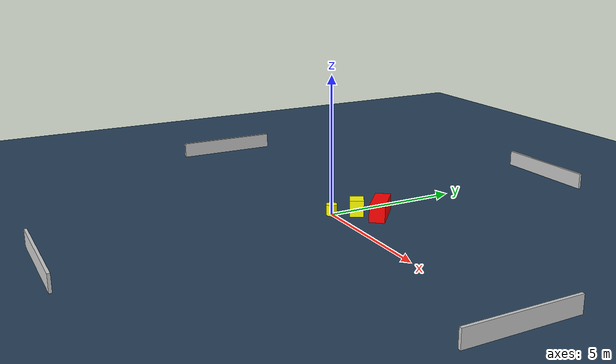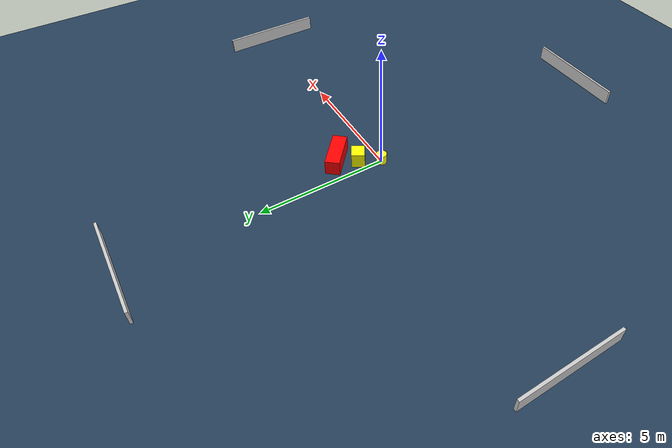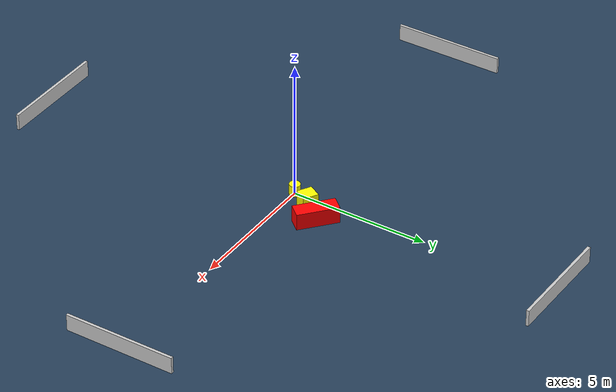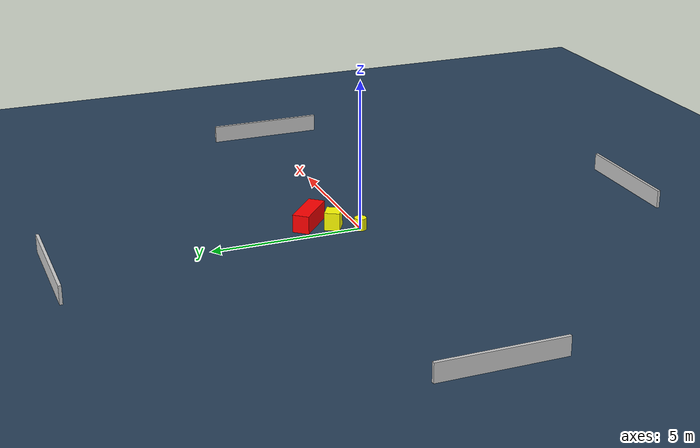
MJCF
<?xml version="1.0" ?>
<mujoco model="generated_environment">
  <option timestep="0.01" integrator="RK4" cone="elliptic"/>
  <default>
    <geom density="1"/>
  </default>
  <asset>
    <texture builtin="gradient" height="3072" name="skybox" rgb1="0.3 0.5 0.7" rgb2="0 0 0" type="skybox" width="512"/>
    <texture builtin="checker" height="300" name="groundplane" rgb1="0.2 0.3 0.4" rgb2="0.1 0.2 0.3" type="2d" width="300"/>
    <material name="groundplane" reflectance="0.2" texrepeat="5 5" texture="groundplane"/>
  </asset>
  <worldbody>
    <light dir="0 0 -1" directional="true" pos="0 0 1.5"/>
    <geom condim="3" friction="0.5 0.005 0.001" material="groundplane" name="floor" pos="0 0 0" size="0 0 0.05" type="plane"/>
    <body name="walls">
      <geom name="wall_1" condim="4" pos="-10.0 0.0 0.3" rgba="0.800000011920929 0.800000011920929 0.800000011920929 1.0" size="0.05 2.0 0.3" type="box"/>
      <geom name="wall_2" condim="4" pos="10.0 0.0 0.3" rgba="0.800000011920929 0.800000011920929 0.800000011920929 1.0" size="0.05 2.0 0.3" type="box"/>
      <geom name="wall_3" condim="4" pos="0.0 -10.0 0.3" rgba="0.800000011920929 0.800000011920929 0.800000011920929 1.0" size="2.0 0.05 0.3" type="box"/>
      <geom name="wall_4" condim="4" pos="0.0 10.0 0.3" rgba="0.800000011920929 0.800000011920929 0.800000011920929 1.0" size="2.0 0.05 0.3" type="box"/>
    </body>
    <body name="robot">
      <joint name="joint_x" type="slide" pos="0 0 0" axis="1 0 0"/>
      <joint name="joint_y" type="slide" pos="0 0 0" axis="0 1 0"/>
      <geom name="robot" type="cylinder" pos="0.0 0.0 0.2" size="0.2 0.2 0.0" mass="5.0" friction="1.0 0.005 0.0001" condim="4" rgba="1.0 1.0 0.0 1.0"/>
    </body>
    <body name="obstacle_1_movable">
      <geom name="obstacle_1_movable" condim="4" pos="0.43153993935279417 0.7753527810371084 0.3" euler="0 0 329.82796981518834" friction="0.0 0.005 0.001" rgba="1.0 1.0 0.0 1.0" size="0.27976273543788255 0.2517692167719094 0.3" type="box" mass="0.1"/>
      <joint type="free"/>
    </body>
    <body name="obstacle_2_static">
      <geom name="obstacle_2_static" condim="4" pos="0.9404436839632456 1.4346406344689338 0.3" euler="0 0 319.6610929309658" friction="0.0 0.005 0.001" rgba="1.0 0.0 0.0 1.0" size="0.7492063609910717 0.2795305196882819 0.3" type="box"/>
    </body>
  </worldbody>
  <actuator>
    <motor name="actuator_x" joint="joint_x" gear="1" ctrlrange="-1 1"/>
    <motor name="actuator_y" joint="joint_y" gear="1" ctrlrange="-1 1"/>
  </actuator>
</mujoco>
